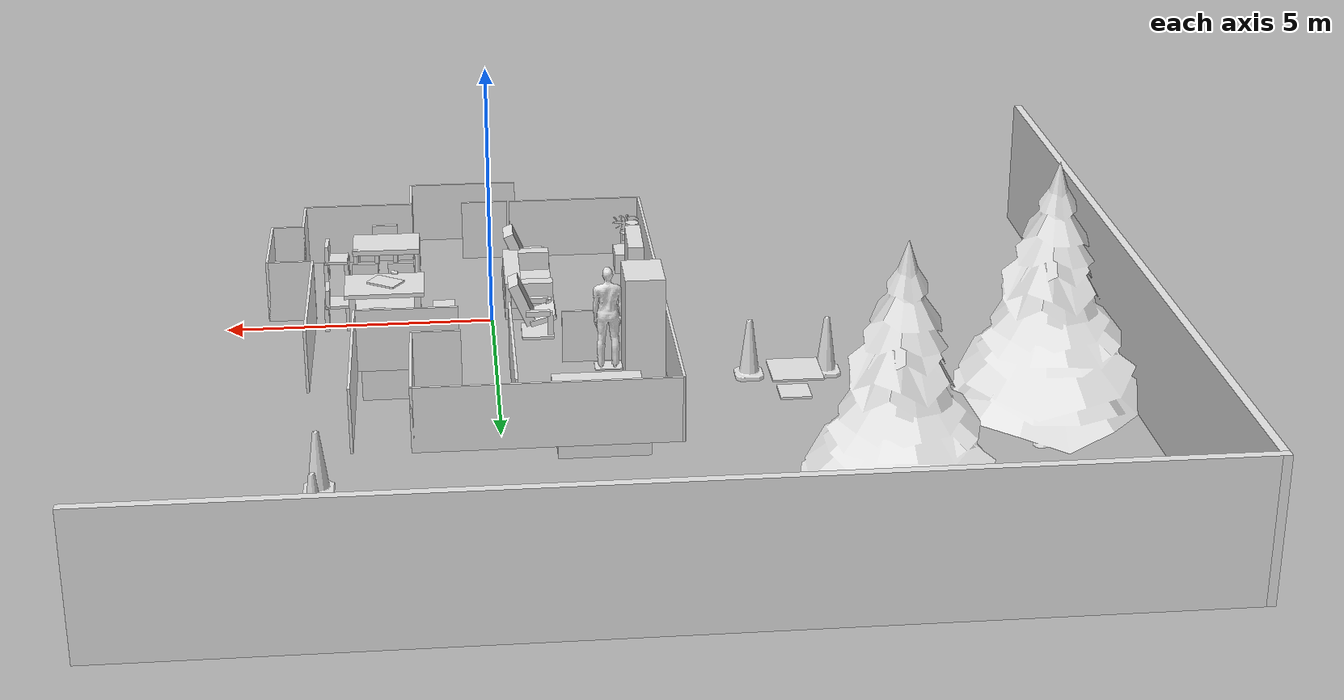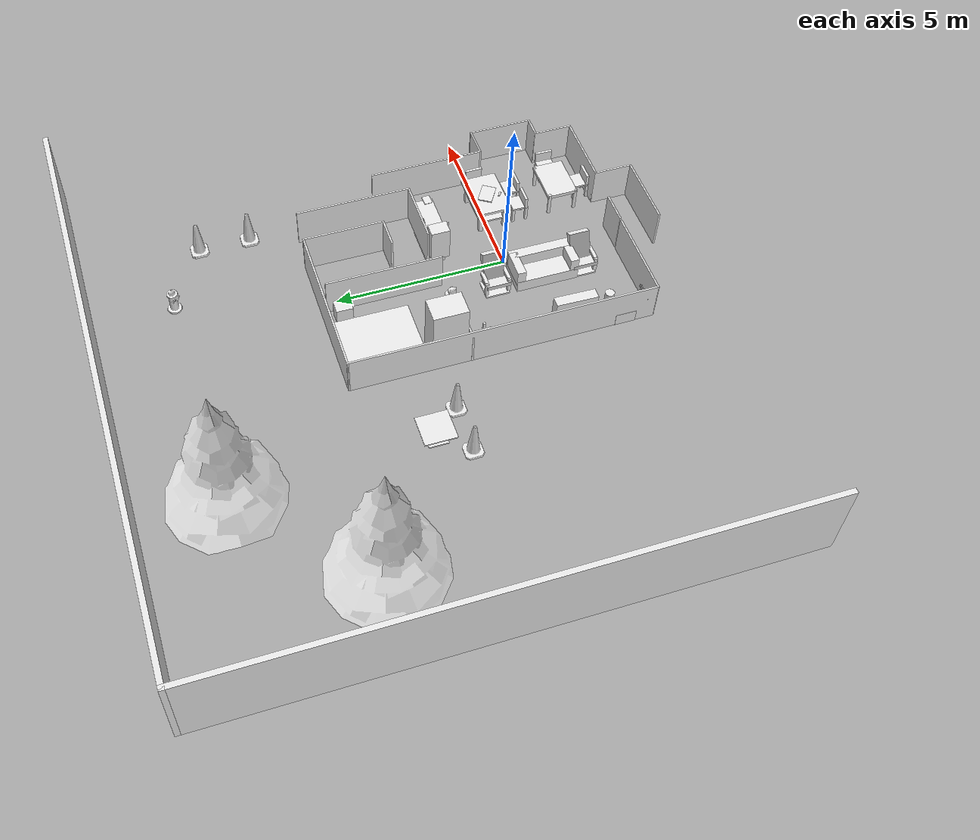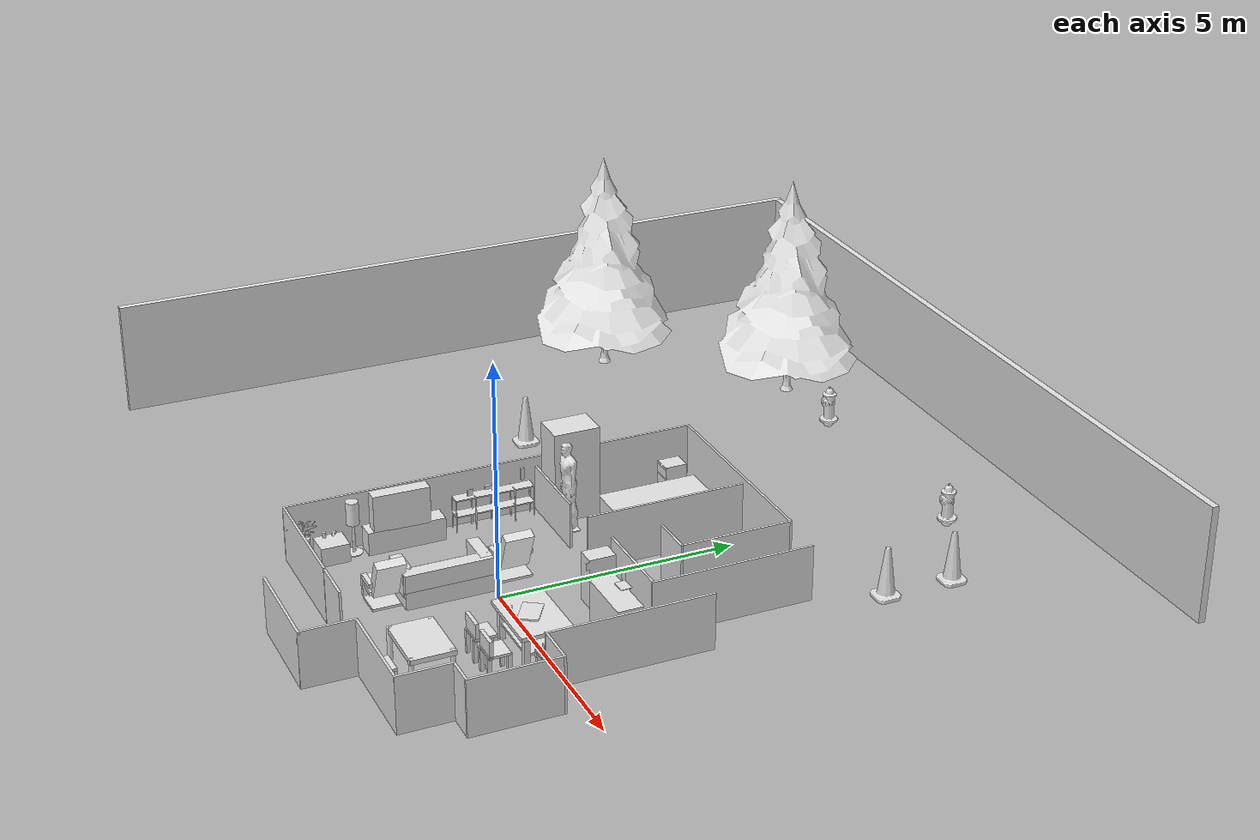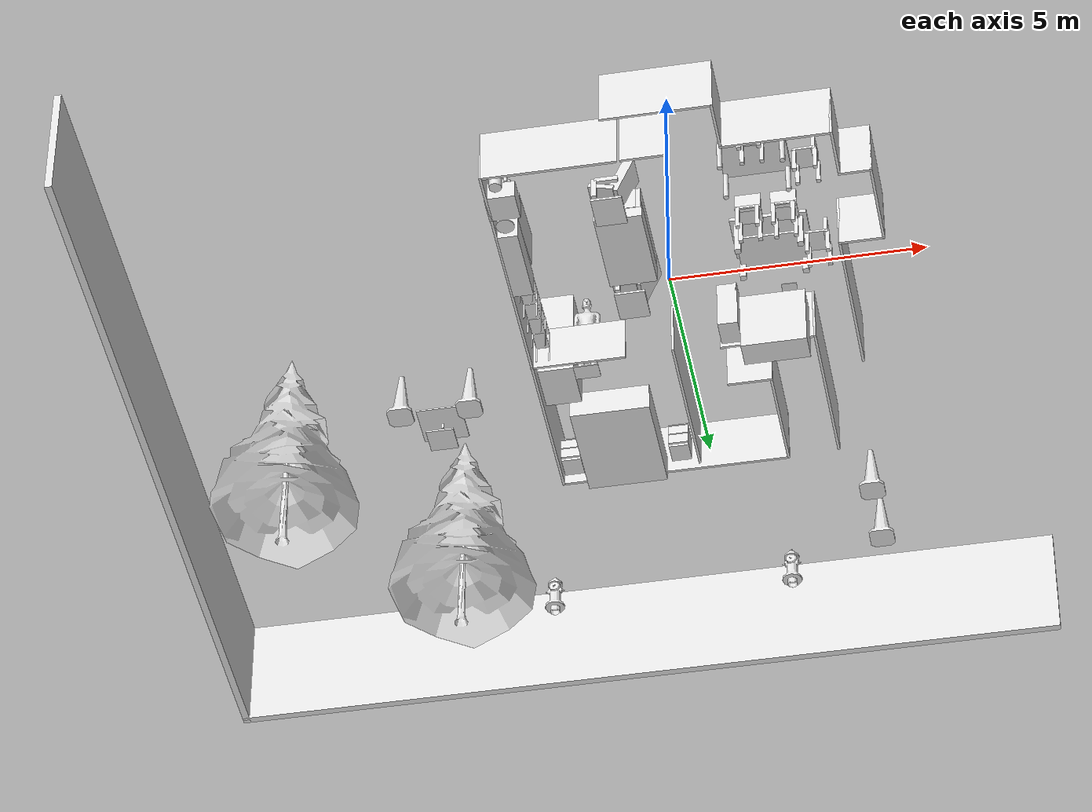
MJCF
<?xml version="1.0" ?>
<mujoco model="isr_testbed">
	<compiler meshdir="isr_testbed/meshes" texturedir="isr_testbed/textures" angle="radian" autolimits="true" balanceinertia="true" boundmass="0.000001" boundinertia="0.000001"/>
	<default>
		<default class="isr_testbed_collision">
			<geom rgba="0.9 0.9 0.9 1.0"/>
		</default>
	</default>
	<asset>
		<mesh name="construction_cone_10_0_10_0_10_0" file="stl/construction_cone.stl" scale="10.0 10.0 10.0"/>
		<mesh name="fire_hydrant" file="stl/fire_hydrant.stl" scale="1.0 1.0 1.0"/>
		<mesh name="pine_tree" file="stl/pine_tree.stl" scale="1.0 1.0 1.0"/>
		<mesh name="standing" file="stl/standing.stl" scale="1.0 1.0 1.0"/>
		<mesh name="plastic_cup" file="stl/plastic_cup.stl" scale="1.0 1.0 1.0"/>
		<mesh name="shelf_0_15000000596046448_0_20000000298023224_0_20000000298023224" file="stl/shelf.stl" scale="0.15000000596046448 0.20000000298023224 0.20000000298023224"/>
		<mesh name="plant_floor_small" file="stl/plant_floor_small.stl" scale="1.0 1.0 1.0"/>
		<mesh name="bedroom_nightstand" file="stl/bedroom_nightstand.stl" scale="1.0 1.0 1.0"/>
		<mesh name="cabinet_diamondback_1_7999999523162842_1_0_1_0" file="stl/cabinet_diamondback.stl" scale="1.7999999523162842 1.0 1.0"/>
		<mesh name="aruco_marker_0_0_10000000149011612_0_10000000149011612_0_10000000149011612" file="stl/aruco_marker_0.stl" scale="0.10000000149011612 0.10000000149011612 0.10000000149011612"/>
	</asset>
	<worldbody>
		<body name="isr_testbed" pos="0.0 0.0 0.0" quat="1.0 0.0 0.0 0.0">
			<body name="walls" pos="0.4918299913406372 0.43352198600769043 0.0" quat="1.0 0.0 0.0 0.0">
				<body name="walls__walls__Wall_19" pos="0.0 0.0 0.0" quat="1.0 0.0 0.0 0.0">
					<inertial mass="95.0" pos="-2.66198992729187 1.5939899682998657 0.5" quat="0.8592931032180786 0.4342738389968872 -0.04348376393318176 -0.26670360565185547" diaginertia="15.639325141906738 964.9898071289062 969.0311889648438"/>
					<geom name="walls__walls__Wall_19_geom_collision_0" type="box" pos="-2.66198992729187 1.5939899682998657 0.5" quat="1.0 0.0 0.0 0.0" size="0.949999988079071 0.02500000037252903 0.5" class="isr_testbed_collision"/>
				</body>
				<body name="walls__walls__Wall_22" pos="0.0 0.0 0.0" quat="1.0 0.0 0.0 0.0">
					<inertial mass="69.0" pos="1.027999997138977 -4.331999778747559 0.6000000238418579" quat="0.49037545919418335 0.3793216049671173 0.560900092124939 0.5486693978309631" diaginertia="10.791659355163574 1400.263671875 1405.997314453125"/>
					<geom name="walls__walls__Wall_22_geom_collision_0" type="box" pos="1.027999997138977 -4.331999778747559 0.6000000238418579" quat="0.7071054577827454 0.0 0.0 0.7071080803871155" size="0.574999988079071 0.02500000037252903 0.6000000238418579" class="isr_testbed_collision"/>
				</body>
				<body name="walls__walls__Wall_24" pos="0.0 0.0 0.0" quat="1.0 0.0 0.0 0.0">
					<inertial mass="69.0" pos="3.128000020980835 -3.2320001125335693 0.6000000238418579" quat="0.319521427154541 0.23038722574710846 0.6647292971611023 0.6347934603691101" diaginertia="8.33503246307373 1428.35498046875 1436.55615234375"/>
					<geom name="walls__walls__Wall_24_geom_collision_0" type="box" pos="3.128000020980835 -3.2320001125335693 0.6000000238418579" quat="0.7071054577827454 0.0 0.0 0.7071080803871155" size="0.574999988079071 0.02500000037252903 0.6000000238418579" class="isr_testbed_collision"/>
				</body>
				<body name="walls__walls__Wall_26" pos="0.0 0.0 0.0" quat="1.0 0.0 0.0 0.0">
					<inertial mass="114.0" pos="3.7279999256134033 -1.7569999694824219 0.6000000238418579" quat="-0.4159852862358093 0.8790838718414307 -0.16797369718551636 0.16109833121299744" diaginertia="26.421409606933594 2009.6641845703125 2014.5794677734375"/>
					<geom name="walls__walls__Wall_26_geom_collision_0" type="box" pos="3.7279999256134033 -1.7569999694824219 0.6000000238418579" quat="0.7071054577827454 0.0 0.0 0.7071080803871155" size="0.949999988079071 0.02500000037252903 0.6000000238418579" class="isr_testbed_collision"/>
				</body>
				<body name="walls__walls__Wall_36" pos="0.0 0.0 0.0" quat="1.0 0.0 0.0 0.0">
					<inertial mass="114.0" pos="1.1169999837875366 1.6639900207519531 0.6000000238418579" quat="-0.46763384342193604 -0.040545616298913956 -0.23409757018089294 0.8513947129249573" diaginertia="36.60622787475586 521.9414672851562 535.3036499023438"/>
					<geom name="walls__walls__Wall_36_geom_collision_0" type="box" pos="1.1169999837875366 1.6639900207519531 0.6000000238418579" quat="1.0 0.0 0.0 0.0" size="0.949999988079071 0.02500000037252903 0.6000000238418579" class="isr_testbed_collision"/>
				</body>
				<body name="walls__walls__Wall_49" pos="0.0 0.0 0.0" quat="1.0 0.0 0.0 0.0">
					<inertial mass="279.0" pos="-1.2869900465011597 5.093989849090576 0.6000000238418579" quat="0.79197096824646 0.04753950610756874 0.03515655919909477 -0.6076890826225281" diaginertia="504.08966064453125 7867.44677734375 8305.4990234375"/>
					<geom name="walls__walls__Wall_49_geom_collision_0" type="box" pos="-1.2869900465011597 5.093989849090576 0.6000000238418579" quat="1.0 0.0 0.0 0.0" size="2.325000047683716 0.02500000037252903 0.6000000238418579" class="isr_testbed_collision"/>
				</body>
				<body name="walls__walls__Wall_51" pos="0.0 0.0 0.0" quat="1.0 0.0 0.0 0.0">
					<inertial mass="54.0" pos="0.5879999995231628 2.743989944458008 0.6000000238418579" quat="0.5109943151473999 -0.3683679401874542 0.5798571109771729 -0.5166774392127991" diaginertia="9.684675216674805 448.6288757324219 451.36328125"/>
					<geom name="walls__walls__Wall_51_geom_collision_0" type="box" pos="0.5879999995231628 2.743989944458008 0.6000000238418579" quat="1.326794858869107e-06 0.0 0.0 1.0" size="0.44999998807907104 0.02500000037252903 0.6000000238418579" class="isr_testbed_collision"/>
				</body>
				<body name="walls__walls__Wall_58" pos="0.0 0.0 0.0" quat="1.0 0.0 0.0 0.0">
					<inertial mass="204.0" pos="2.0420000553131104 3.3389899730682373 0.6000000238418579" quat="0.20206968486309052 0.8408445715904236 0.4616711437702179 0.19750437140464783" diaginertia="66.4295883178711 3373.263671875 3399.26806640625"/>
					<geom name="walls__walls__Wall_58_geom_collision_0" type="box" pos="2.0420000553131104 3.3389899730682373 0.6000000238418579" quat="0.7071054577827454 0.0 0.0 0.7071080803871155" size="1.7000000476837158 0.02500000037252903 0.6000000238418579" class="isr_testbed_collision"/>
				</body>
				<body name="walls__walls__Wall_63" pos="0.0 0.0 0.0" quat="1.0 0.0 0.0 0.0">
					<inertial mass="204.0" pos="2.878000020980835 0.8429999947547913 0.6000000238418579" quat="0.9819633364677429 -0.030275439843535423 -0.10447938740253448 0.1546461433172226" diaginertia="194.31451416015625 1958.2252197265625 2105.786865234375"/>
					<geom name="walls__walls__Wall_63_geom_collision_0" type="box" pos="2.878000020980835 0.8429999947547913 0.6000000238418579" quat="0.7071054577827454 0.0 0.0 0.7071080803871155" size="1.7000000476837158 0.02500000037252903 0.6000000238418579" class="isr_testbed_collision"/>
				</body>
				<body name="walls__walls__Door_4" pos="0.0 0.0 0.0" quat="1.0 0.0 0.0 0.0">
					<inertial mass="54.36000061035156" pos="-0.4442499876022339 -3.764090061187744 0.6000000238418579" quat="0.557914137840271 0.49685895442962646 0.515251636505127 0.41997474431991577" diaginertia="10.031599998474121 804.3779907226562 807.0777587890625"/>
					<geom name="walls__walls__Door_4_geom_collision_0" type="box" pos="-0.4442499876022339 -3.764090061187744 0.6000000238418579" quat="0.9999998807907104 0.0 0.0 -0.0004799999878741801" size="0.453000009059906 0.02500000037252903 0.6000000238418579" class="isr_testbed_collision"/>
				</body>
				<body name="walls__walls__Wall_23" pos="0.0 0.0 0.0" quat="1.0 0.0 0.0 0.0">
					<inertial mass="129.0" pos="2.078000068664551 -3.7820000648498535 0.6000000238418579" quat="0.8568839430809021 -0.08926455676555634 -0.027664201334118843 -0.5069678425788879" diaginertia="53.40256881713867 2475.46484375 2498.78515625"/>
					<geom name="walls__walls__Wall_23_geom_collision_0" type="box" pos="2.078000068664551 -3.7820000648498535 0.6000000238418579" quat="1.0 0.0 0.0 0.0" size="1.0750000476837158 0.02500000037252903 0.6000000238418579" class="isr_testbed_collision"/>
				</body>
				<body name="walls__walls__Wall_27" pos="0.0 0.0 0.0" quat="1.0 0.0 0.0 0.0">
					<inertial mass="54.0" pos="3.302999973297119 -0.8320000171661377 0.6000000238418579" quat="0.6999917030334473 -0.6982873678207397 0.023055559024214745 -0.14790122210979462" diaginertia="6.614678382873535 649.6946411132812 655.8627319335938"/>
					<geom name="walls__walls__Wall_27_geom_collision_0" type="box" pos="3.302999973297119 -0.8320000171661377 0.6000000238418579" quat="1.326794858869107e-06 0.0 0.0 1.0" size="0.44999998807907104 0.02500000037252903 0.6000000238418579" class="isr_testbed_collision"/>
				</body>
				<body name="walls__walls__Wall_50" pos="0.0 0.0 0.0" quat="1.0 0.0 0.0 0.0">
					<inertial mass="144.0" pos="1.0129899978637695 3.918989896774292 0.6000000238418579" quat="0.4731360077857971 -0.3900817036628723 0.5872927308082581 -0.5282668471336365" diaginertia="18.409515380859375 2479.284912109375 2497.619384765625"/>
					<geom name="walls__walls__Wall_50_geom_collision_0" type="box" pos="1.0129899978637695 3.918989896774292 0.6000000238418579" quat="-0.7071054577827454 0.0 0.0 0.7071080803871155" size="1.2000000476837158 0.02500000037252903 0.6000000238418579" class="isr_testbed_collision"/>
				</body>
				<body name="walls__walls__Wall_61" pos="0.0 0.0 0.0" quat="1.0 0.0 0.0 0.0">
					<inertial mass="159.0" pos="-2.2749900817871094 -3.75600004196167 0.6000000238418579" quat="-0.48653125762939453 0.03129342570900917 0.08292688429355621 0.8691554665565491" diaginertia="86.72979736328125 3167.241943359375 3216.861572265625"/>
					<geom name="walls__walls__Wall_61_geom_collision_0" type="box" pos="-2.2749900817871094 -3.75600004196167 0.6000000238418579" quat="1.0 0.0 0.0 0.0" size="1.3250000476837158 0.02500000037252903 0.6000000238418579" class="isr_testbed_collision"/>
				</body>
				<body name="walls__walls__Wall_21" pos="0.0 0.0 0.0" quat="1.0 0.0 0.0 0.0">
					<inertial mass="129.0" pos="-0.02199999988079071 -4.881999969482422 0.6000000238418579" quat="-0.7041720747947693 0.04323595389723778 0.043605584651231766 0.7073689699172974" diaginertia="64.93980407714844 3136.58642578125 3171.028564453125"/>
					<geom name="walls__walls__Wall_21_geom_collision_0" type="box" pos="-0.02199999988079071 -4.881999969482422 0.6000000238418579" quat="1.0 0.0 0.0 0.0" size="1.0750000476837158 0.02500000037252903 0.6000000238418579" class="isr_testbed_collision"/>
				</body>
				<body name="walls__walls__Wall_48" pos="0.0 0.0 0.0" quat="1.0 0.0 0.0 0.0">
					<inertial mass="534.0006103515625" pos="-3.5809900760650635 0.6690000295639038 0.6000000238418579" quat="-0.03689687326550484 0.9963682889938354 0.0024616303853690624 -0.07669904828071594" diaginertia="3199.31298828125 7730.9833984375 10805.7783203125"/>
					<geom name="walls__walls__Wall_48_geom_collision_0" type="box" pos="-3.5809900760650635 0.6690000295639038 0.6000000238418579" quat="0.7066280245780945 0.0 0.0 0.7075852155685425" size="4.450005054473877 0.02500000037252903 0.6000000238418579" class="isr_testbed_collision"/>
				</body>
				<body name="walls__walls__Wall_25" pos="0.0 0.0 0.0" quat="1.0 0.0 0.0 0.0">
					<inertial mass="39.0" pos="3.427999973297119 -2.681999921798706 0.6000000238418579" quat="-0.658708930015564 0.6756038665771484 -0.18054819107055664 0.27760472893714905" diaginertia="5.13415002822876 754.3189086914062 758.4054565429688"/>
					<geom name="walls__walls__Wall_25_geom_collision_0" type="box" pos="3.427999973297119 -2.681999921798706 0.6000000238418579" quat="1.0 0.0 0.0 0.0" size="0.32499998807907104 0.02500000037252903 0.6000000238418579" class="isr_testbed_collision"/>
				</body>
				<body name="walls__walls__Wall_53" pos="0.0 0.0 0.0" quat="1.0 0.0 0.0 0.0">
					<inertial mass="204.0" pos="-0.7649999856948853 3.2479898929595947 0.6000000238418579" quat="0.5049051642417908 0.37802302837371826 0.35284602642059326 0.6911360621452332" diaginertia="45.70252227783203 2531.861572265625 2554.343994140625"/>
					<geom name="walls__walls__Wall_53_geom_collision_0" type="box" pos="-0.7649999856948853 3.2479898929595947 0.6000000238418579" quat="0.7071054577827454 0.0 0.0 0.7071080803871155" size="1.7000000476837158 0.02500000037252903 0.6000000238418579" class="isr_testbed_collision"/>
				</body>
			</body>
			<body name="cone1__Construction_Cone__link" pos="-5.940000057220459 2.9700000286102295 0.0" quat="1.0 0.0 0.0 0.0">
				<inertial mass="0.06330608576536179" pos="-5.940000057220459 2.9700000286102295 0.03022611141204834" quat="-0.5754276514053345 0.4109538197517395 0.5754276514053345 0.4109538197517395" diaginertia="1.1387942322471645e-05 0.00010928498522844166 0.00010928498522844166"/>
				<geom name="cone1__Construction_Cone__link_geom_collision_0_construction_cone" type="mesh" pos="0.0 0.0 0.0" quat="1.0 0.0 0.0 0.0" mesh="construction_cone_10_0_10_0_10_0" class="isr_testbed_collision"/>
			</body>
			<body name="cone3__Construction_Cone__link" pos="3.0299999713897705 6.840000152587891 0.0" quat="1.0 0.0 0.0 0.0">
				<inertial mass="0.06330608576536179" pos="3.0299999713897705 6.840000152587891 0.03022611141204834" quat="-0.5754276514053345 0.4109538197517395 0.5754276514053345 0.4109538197517395" diaginertia="1.1387942322471645e-05 0.00010928498522844166 0.00010928498522844166"/>
				<geom name="cone3__Construction_Cone__link_geom_collision_0_construction_cone" type="mesh" pos="0.0 0.0 0.0" quat="1.0 0.0 0.0 0.0" mesh="construction_cone_10_0_10_0_10_0" class="isr_testbed_collision"/>
			</body>
			<body name="table_outside__cafe_table__link" pos="-5.25 3.7699999809265137 0.0" quat="1.0 0.0 0.0 0.0">
				<inertial mass="41.983516693115234" pos="-5.25 3.7699999809265137 0.32101869583129883" quat="0.7071067690849304 0.0 0.7071067690849304 0.0" diaginertia="4.708928108215332 8.308773040771484 8.308773040771484"/>
				<geom name="table_outside__cafe_table__link_geom_collision_0" type="box" pos="0.0 0.0 0.44999998807907104" quat="1.0 0.0 0.0 0.0" size="0.45649999380111694 0.45649999380111694 0.017500000074505806" class="isr_testbed_collision"/>
				<geom name="table_outside__cafe_table__link_geom_collision_1" type="box" pos="0.0 0.0 0.3700000047683716" quat="1.0 0.0 0.0 0.0" size="0.020999999716877937 0.020999999716877937 0.07500000298023224" class="isr_testbed_collision"/>
				<geom name="table_outside__cafe_table__link_geom_collision_2" type="box" pos="0.0 0.0 0.019999999552965164" quat="1.0 0.0 0.0 0.0" size="0.2800000011920929 0.2800000011920929 0.019999999552965164" class="isr_testbed_collision"/>
			</body>
			<body name="hydrant2__fire_hydrant__link" pos="-4.0 9.449999809265137 0.0" quat="1.0 0.0 0.0 0.0">
				<inertial mass="36.59939956665039" pos="-4.0 9.439549446105957 0.4068094491958618" quat="0.49307262897491455 0.5068327188491821 -0.5068296194076538 0.49307575821876526" diaginertia="0.3782685101032257 8.444462776184082 8.449933052062988"/>
				<geom name="hydrant2__fire_hydrant__link_geom_collision_0_fire_hydrant" type="mesh" pos="0.0 0.0 0.0" quat="1.0 0.0 0.0 0.0" mesh="fire_hydrant" class="isr_testbed_collision"/>
			</body>
			<body name="tree2__pine_tree__link" pos="-9.109999656677246 6.25 0.0" quat="1.0 0.0 0.0 0.0">
				<inertial mass="45616.28515625" pos="-9.111001968383789 6.250436305999756 1.7184935808181763" quat="-0.24968722462654114 0.6612666845321655 0.24879097938537598 0.6621825695037842" diaginertia="18388.896484375 174619.78125 174635.328125"/>
				<geom name="tree2__pine_tree__link_geom_collision_0_pine_tree" type="mesh" pos="0.0 0.0 0.0" quat="1.0 0.0 0.0 0.0" mesh="pine_tree" class="isr_testbed_collision"/>
			</body>
			<body name="wardrobe__wardrobe__base_link" pos="-2.6500000953674316 2.440000057220459 0.0" quat="1.0 0.0 0.0 0.0">
				<inertial mass="1440.0" pos="-2.6500000953674316 2.640000104904175 1.0" quat="-0.174540713429451 0.6843466758728027 -0.2803066372871399 -0.6501025557518005" diaginertia="194.10926818847656 2033.285400390625 2092.22119140625"/>
				<geom name="wardrobe__wardrobe__base_link_geom_collision_0" type="box" pos="0.0 0.20000000298023224 1.0" quat="0.7073882818222046 0.0 0.0 0.7068251967430115" size="0.5 0.36000001430511475 1.0" class="isr_testbed_collision"/>
			</body>
			<body name="basmati_rice__basmati_rice__base_link" pos="-2.8499999046325684 0.5 0.800000011920929" quat="1.0 0.0 0.0 0.0">
				<inertial mass="0.8503400087356567" pos="-2.8499999046325684 0.5 0.800000011920929" quat="0.7071067690849304 0.0 0.7071067690849304 0.0" diaginertia="0.0011738234898075461 0.0021670206915587187 0.003102607326582074"/>
				<geom name="basmati_rice__basmati_rice__base_link_geom_collision_0" type="box" pos="0.0 0.0 0.0" quat="1.0 0.0 0.0 0.0" size="0.020500000566244125 0.061000000685453415 0.08500000089406967" class="isr_testbed_collision"/>
			</body>
			<body name="beer__beer__link" pos="-2.7300000190734863 -2.640000104904175 0.6000000238418579" quat="0.8775825500488281 0.0 0.0 0.4794255495071411">
				<inertial mass="0.46181410551071167" pos="-2.7300000190734863 -2.640000104904175 0.6000000238418579" quat="0.7071067690849304 0.0 0.7071067690849304 0.0" diaginertia="0.00028286114684306085 0.0006956075085327029 0.0006956075085327029"/>
				<geom name="beer__beer__link_geom_collision_0" type="cylinder" pos="0.0 0.0 0.0" quat="1.0 0.0 0.0 0.0" size="0.03500000014901161 0.05999999865889549 0.0" class="isr_testbed_collision"/>
			</body>
			<body name="cup2__plastic_cup__link" pos="1.8300000429153442 -0.47999998927116394 0.800000011920929" quat="0.8775825500488281 0.0 0.0 0.4794255495071411">
				<inertial mass="0.059198495000600815" pos="1.8187295198440552 -0.4727632999420166 0.8728533387184143" quat="0.01314468402415514 0.7069846987724304 -0.013144700787961483 -0.7069844603538513" diaginertia="0.00013955631584394723 0.0003071530372835696 0.0003935518325306475"/>
				<geom name="cup2__plastic_cup__link_geom_collision_0_plastic_cup" type="mesh" pos="0.0 0.0 0.06499999761581421" quat="1.0 0.0 0.0 0.0" mesh="plastic_cup" class="isr_testbed_collision"/>
			</body>
			<body name="lamp_ikea_arstid__lamp_ikea_arstid__base_link" pos="-2.8499999046325684 -2.0 0.0" quat="0.7109135389328003 0.0 0.0 0.703279435634613">
				<inertial mass="30.84415626525879" pos="-2.8499999046325684 -2.0 0.8053982257843018" quat="0.7071067690849304 0.0 0.7071067690849304 0.0" diaginertia="0.2583146393299103 22.704551696777344 22.704551696777344"/>
				<geom name="lamp_ikea_arstid__lamp_ikea_arstid__base_link_geom_collision_0" type="cylinder" pos="0.0 0.0 0.41999998688697815" quat="1.0 0.0 0.0 0.0" size="0.029999999329447746 0.4000000059604645 0.0" class="isr_testbed_collision"/>
				<geom name="lamp_ikea_arstid__lamp_ikea_arstid__base_link_geom_collision_1" type="cylinder" pos="0.0 0.0 0.0" quat="1.0 0.0 0.0 0.0" size="0.18000000715255737 0.009999999776482582 0.0" class="isr_testbed_collision"/>
				<geom name="lamp_ikea_arstid__lamp_ikea_arstid__base_link_geom_collision_2" type="cylinder" pos="0.0 0.0 0.8999999761581421" quat="1.0 0.0 0.0 0.0" size="0.12999999523162842 0.25 0.0" class="isr_testbed_collision"/>
			</body>
			<body name="apple_juice_box__apple_juice__base_link" pos="-2.8399999141693115 1.6399999856948853 1.0" quat="1.0 0.0 0.0 0.0">
				<inertial mass="1.2330989837646484" pos="-2.8399999141693115 1.6399999856948853 1.0054999589920044" quat="0.7071067690849304 0.0 0.7071067690849304 0.0" diaginertia="0.0009784640278667212 0.007419659290462732 0.007419659290462732"/>
				<geom name="apple_juice_box__apple_juice__base_link_geom_collision_0" type="box" pos="0.0 0.0 0.005499999970197678" quat="1.0 0.0 0.0 0.0" size="0.03449999913573265 0.03449999913573265 0.12950000166893005" class="isr_testbed_collision"/>
			</body>
			<body name="bed__bed__link_0" pos="-1.9493299722671509 4.309919834136963 0.0" quat="1.0 0.0 0.0 0.0">
				<inertial mass="2112.0" pos="-1.7493300437927246 4.309919834136963 0.0" quat="-0.7071067690849304 0.0 0.0 0.7071067690849304" diaginertia="598.4000244140625 915.2000122070312 1386.8800048828125"/>
				<geom name="bed__bed__link_0_geom_collision_0" type="box" pos="0.20000000298023224 0.0 0.0" quat="1.0 0.0 0.0 0.0" size="0.800000011920929 1.100000023841858 0.30000001192092896" class="isr_testbed_collision"/>
			</body>
			<body name="nightstand2__bedroom_nightstand__link_0" pos="-2.890000104904175 5.037129878997803 0.0" quat="1.0 0.0 0.0 0.0">
				<inertial mass="-149.60366821289062" pos="-12.886117935180664 8.398426055908203 -45.009151458740234" quat="0.6344698667526245 0.01081196777522564 0.7721571326255798 0.03323240578174591" diaginertia="676.2904052734375 2932.33203125 3056.34130859375"/>
				<geom name="nightstand2__bedroom_nightstand__link_0_geom_collision_0_bedroom_nightstand" type="mesh" pos="0.0 0.0 0.0" quat="1.0 0.0 0.0 0.0" mesh="bedroom_nightstand" class="isr_testbed_collision"/>
			</body>
			<body name="table_living_room__table_living_room__base_link" pos="2.0 -0.15669499337673187 0.0" quat="0.7086488008499146 0.0 0.0 -0.7055613398551941">
				<inertial mass="221.1999969482422" pos="2.0238964557647705 -0.1275668740272522 0.5856600403785706" quat="0.02720206044614315 0.7267293930053711 -0.029595907777547836 -0.6857466697692871" diaginertia="67.39175415039062 106.83684539794922 133.34300231933594"/>
				<geom name="table_living_room__table_living_room__base_link_geom_collision_0" type="box" pos="-0.029999999329447746 0.02500000037252903 0.75" quat="1.0 0.0 0.0 0.0" size="0.5249999761581421 0.75 0.03999999910593033" class="isr_testbed_collision"/>
				<geom name="table_living_room__table_living_room__base_link_geom_collision_1" type="box" pos="-0.029999999329447746 0.02500000037252903 0.3499999940395355" quat="1.0 0.0 0.0 0.0" size="0.4000000059604645 0.6499999761581421 0.02500000037252903" class="isr_testbed_collision"/>
				<geom name="table_living_room__table_living_room__base_link_geom_collision_2" type="box" pos="-0.4000000059604645 0.6299999952316284 0.38999998569488525" quat="1.0 0.0 0.0 0.0" size="0.05999999865889549 0.05999999865889549 0.375" class="isr_testbed_collision"/>
				<geom name="table_living_room__table_living_room__base_link_geom_collision_3" type="box" pos="0.3499999940395355 0.6299999952316284 0.38999998569488525" quat="1.0 0.0 0.0 0.0" size="0.05999999865889549 0.05999999865889549 0.375" class="isr_testbed_collision"/>
				<geom name="table_living_room__table_living_room__base_link_geom_collision_4" type="box" pos="0.3499999940395355 -0.5899999737739563 0.38999998569488525" quat="1.0 0.0 0.0 0.0" size="0.05999999865889549 0.05999999865889549 0.375" class="isr_testbed_collision"/>
				<geom name="table_living_room__table_living_room__base_link_geom_collision_5" type="box" pos="-0.4000000059604645 -0.5899999737739563 0.38999998569488525" quat="1.0 0.0 0.0 0.0" size="0.05999999865889549 0.05999999865889549 0.375" class="isr_testbed_collision"/>
			</body>
			<body name="cabinet_ikea_galant__cabinet_ikea_galant__base_link" pos="1.7999999523162842 1.6799999475479126 0.0" quat="1.0 0.0 0.0 0.0">
				<inertial mass="926.6400146484375" pos="1.7999999523162842 1.6799999475479126 0.0" quat="-0.5 0.5 0.5 0.5" diaginertia="153.01914978027344 157.0654754638672 265.0499267578125"/>
				<geom name="cabinet_ikea_galant__cabinet_ikea_galant__base_link_geom_collision_0" type="box" pos="0.0 0.0 0.0" quat="1.0 0.0 0.0 0.0" size="0.6499999761581421 0.27000001072883606 0.6600000262260437" class="isr_testbed_collision"/>
			</body>
			<body name="chair_dinning_room_1__simple_chair__link_0" pos="1.909999966621399 -3.049999952316284 0.0" quat="1.0 0.0 0.0 0.0">
				<inertial mass="38.29999923706055" pos="2.0566580295562744 -3.163250684738159 0.42225849628448486" quat="0.697449803352356 -0.4026322364807129 -0.40812212228775024 -0.42998531460762024" diaginertia="1.8411253690719604 10.58272933959961 10.877289772033691"/>
				<geom name="chair_dinning_room_1__simple_chair__link_0_geom_collision_0" type="box" pos="0.15000000596046448 -0.05000000074505806 0.44999998807907104" quat="1.0 0.0 0.0 0.0" size="0.25 0.22499999403953552 0.02500000037252903" class="isr_testbed_collision"/>
				<geom name="chair_dinning_room_1__simple_chair__link_0_geom_collision_1" type="box" pos="0.15000000596046448 -0.2199999988079071 0.6000000238418579" quat="1.0 0.0 0.0 0.0" size="0.25 0.03750000149011612 0.1899999976158142" class="isr_testbed_collision"/>
				<geom name="chair_dinning_room_1__simple_chair__link_0_geom_collision_2" type="box" pos="0.33000001311302185 -0.25 0.20000000298023224" quat="1.0 0.0 0.0 0.0" size="0.03999999910593033 0.03999999910593033 0.25" class="isr_testbed_collision"/>
				<geom name="chair_dinning_room_1__simple_chair__link_0_geom_collision_3" type="box" pos="0.33000001311302185 0.15000000596046448 0.20000000298023224" quat="1.0 0.0 0.0 0.0" size="0.03999999910593033 0.03999999910593033 0.25" class="isr_testbed_collision"/>
				<geom name="chair_dinning_room_1__simple_chair__link_0_geom_collision_4" type="box" pos="-0.05000000074505806 -0.25 0.20000000298023224" quat="1.0 0.0 0.0 0.0" size="0.03999999910593033 0.03999999910593033 0.25" class="isr_testbed_collision"/>
				<geom name="chair_dinning_room_1__simple_chair__link_0_geom_collision_5" type="box" pos="-0.05000000074505806 0.15000000596046448 0.20000000298023224" quat="1.0 0.0 0.0 0.0" size="0.03999999910593033 0.03999999910593033 0.25" class="isr_testbed_collision"/>
			</body>
			<body name="chair_kitchen_1__simple_chair__link_0" pos="1.5700000524520874 -0.9800000190734863 0.0" quat="1.0 0.0 0.0 0.0">
				<inertial mass="38.29999923706055" pos="1.7166579961776733 -1.0932506322860718 0.42225849628448486" quat="0.697449803352356 -0.4026322364807129 -0.40812212228775024 -0.42998531460762024" diaginertia="1.8411253690719604 10.58272933959961 10.877289772033691"/>
				<geom name="chair_kitchen_1__simple_chair__link_0_geom_collision_0" type="box" pos="0.15000000596046448 -0.05000000074505806 0.44999998807907104" quat="1.0 0.0 0.0 0.0" size="0.25 0.22499999403953552 0.02500000037252903" class="isr_testbed_collision"/>
				<geom name="chair_kitchen_1__simple_chair__link_0_geom_collision_1" type="box" pos="0.15000000596046448 -0.2199999988079071 0.6000000238418579" quat="1.0 0.0 0.0 0.0" size="0.25 0.03750000149011612 0.1899999976158142" class="isr_testbed_collision"/>
				<geom name="chair_kitchen_1__simple_chair__link_0_geom_collision_2" type="box" pos="0.33000001311302185 -0.25 0.20000000298023224" quat="1.0 0.0 0.0 0.0" size="0.03999999910593033 0.03999999910593033 0.25" class="isr_testbed_collision"/>
				<geom name="chair_kitchen_1__simple_chair__link_0_geom_collision_3" type="box" pos="0.33000001311302185 0.15000000596046448 0.20000000298023224" quat="1.0 0.0 0.0 0.0" size="0.03999999910593033 0.03999999910593033 0.25" class="isr_testbed_collision"/>
				<geom name="chair_kitchen_1__simple_chair__link_0_geom_collision_4" type="box" pos="-0.05000000074505806 -0.25 0.20000000298023224" quat="1.0 0.0 0.0 0.0" size="0.03999999910593033 0.03999999910593033 0.25" class="isr_testbed_collision"/>
				<geom name="chair_kitchen_1__simple_chair__link_0_geom_collision_5" type="box" pos="-0.05000000074505806 0.15000000596046448 0.20000000298023224" quat="1.0 0.0 0.0 0.0" size="0.03999999910593033 0.03999999910593033 0.25" class="isr_testbed_collision"/>
			</body>
			<body name="chair_kitchen_3__simple_chair__link_0" pos="2.880000114440918 -0.25999999046325684 0.0" quat="0.7002847790718079 0.0 0.0 0.7138636112213135">
				<inertial mass="38.29999923706055" pos="2.9904136657714844 -0.11119437962770462 0.42225849628448486" quat="0.697449803352356 -0.4026322364807129 -0.40812212228775024 -0.42998531460762024" diaginertia="1.8411253690719604 10.58272933959961 10.877289772033691"/>
				<geom name="chair_kitchen_3__simple_chair__link_0_geom_collision_0" type="box" pos="0.15000000596046448 -0.05000000074505806 0.44999998807907104" quat="1.0 0.0 0.0 0.0" size="0.25 0.22499999403953552 0.02500000037252903" class="isr_testbed_collision"/>
				<geom name="chair_kitchen_3__simple_chair__link_0_geom_collision_1" type="box" pos="0.15000000596046448 -0.2199999988079071 0.6000000238418579" quat="1.0 0.0 0.0 0.0" size="0.25 0.03750000149011612 0.1899999976158142" class="isr_testbed_collision"/>
				<geom name="chair_kitchen_3__simple_chair__link_0_geom_collision_2" type="box" pos="0.33000001311302185 -0.25 0.20000000298023224" quat="1.0 0.0 0.0 0.0" size="0.03999999910593033 0.03999999910593033 0.25" class="isr_testbed_collision"/>
				<geom name="chair_kitchen_3__simple_chair__link_0_geom_collision_3" type="box" pos="0.33000001311302185 0.15000000596046448 0.20000000298023224" quat="1.0 0.0 0.0 0.0" size="0.03999999910593033 0.03999999910593033 0.25" class="isr_testbed_collision"/>
				<geom name="chair_kitchen_3__simple_chair__link_0_geom_collision_4" type="box" pos="-0.05000000074505806 -0.25 0.20000000298023224" quat="1.0 0.0 0.0 0.0" size="0.03999999910593033 0.03999999910593033 0.25" class="isr_testbed_collision"/>
				<geom name="chair_kitchen_3__simple_chair__link_0_geom_collision_5" type="box" pos="-0.05000000074505806 0.15000000596046448 0.20000000298023224" quat="1.0 0.0 0.0 0.0" size="0.03999999910593033 0.03999999910593033 0.25" class="isr_testbed_collision"/>
			</body>
			<body name="chair1__tv_chair__link_0" pos="-0.7300000190734863 -2.049999952316284 0.0" quat="0.7073882818222046 0.0 0.0 -0.7068251967430115">
				<inertial mass="176.0" pos="-0.6993750333786011 -2.049975633621216 0.48721590638160706" quat="-0.5439413785934448 -0.4518050253391266 -0.4518050253391266 0.5439413785934448" diaginertia="13.709712028503418 64.62010955810547 65.55413055419922"/>
				<geom name="chair1__tv_chair__link_0_geom_collision_0" type="box" pos="0.0 -0.20000000298023224 0.3499999940395355" quat="0.9902160167694092 -0.13954311609268188 0.0 0.0" size="0.3499999940395355 0.25 0.05000000074505806" class="isr_testbed_collision"/>
				<geom name="chair1__tv_chair__link_0_geom_collision_1" type="box" pos="0.0 -0.10000000149011612 0.0" quat="1.0 0.0 0.0 0.0" size="0.3499999940395355 0.30000001192092896 0.02500000037252903" class="isr_testbed_collision"/>
				<geom name="chair1__tv_chair__link_0_geom_collision_2" type="box" pos="0.0 0.18000000715255737 0.6499999761581421" quat="0.9800665974617004 -0.19866932928562164 0.0 0.0" size="0.30000001192092896 0.10000000149011612 0.42500001192092896" class="isr_testbed_collision"/>
				<geom name="chair1__tv_chair__link_0_geom_collision_3" type="box" pos="0.33000001311302185 -0.33000001311302185 0.30000001192092896" quat="1.0 0.0 0.0 0.0" size="0.05000000074505806 0.05000000074505806 0.22499999403953552" class="isr_testbed_collision"/>
				<geom name="chair1__tv_chair__link_0_geom_collision_4" type="box" pos="-0.33000001311302185 -0.33000001311302185 0.30000001192092896" quat="1.0 0.0 0.0 0.0" size="0.05000000074505806 0.05000000074505806 0.22499999403953552" class="isr_testbed_collision"/>
				<geom name="chair1__tv_chair__link_0_geom_collision_5" type="box" pos="-0.33000001311302185 -0.10000000149011612 0.5" quat="1.0 0.0 0.0 0.0" size="0.05000000074505806 0.22499999403953552 0.05000000074505806" class="isr_testbed_collision"/>
				<geom name="chair1__tv_chair__link_0_geom_collision_6" type="box" pos="0.33000001311302185 -0.10000000149011612 0.5" quat="1.0 0.0 0.0 0.0" size="0.05000000074505806 0.22499999403953552 0.05000000074505806" class="isr_testbed_collision"/>
			</body>
			<body name="tv__tv__link_0" pos="-2.8499999046325684 -0.9399999976158142 0.03526400029659271" quat="0.9999154806137085 0.0 0.0 -0.012999634258449078">
				<inertial mass="288.0" pos="-2.8020966053009033 -1.0212727785110474 0.8352640271186829" quat="0.7262589335441589 0.038855355232954025 -0.6851867437362671 -0.039463289082050323" diaginertia="36.556617736816406 204.61434936523438 236.75543212890625"/>
				<geom name="tv__tv__link_0_geom_collision_0" type="box" pos="0.05000000074505806 -0.07999999821186066 0.800000011920929" quat="1.0 0.0 0.0 0.0" size="0.15000000596046448 0.6000000238418579 0.4000000059604645" class="isr_testbed_collision"/>
			</body>
			<body name="aruco_marker_0__aruco_marker_0__link_0" pos="1.5 1.9600000381469727 0.800000011920929" quat="0.7071067690849304 0.0 0.0 -0.7071067690849304">
				<inertial mass="67.35445404052734" pos="1.4999998807907104 1.9600000381469727 0.800000011920929" quat="-0.6088486909866333 -0.3595876395702362 0.6088486909866333 0.3595876395702362" diaginertia="22.453073501586914 22.453079223632812 44.90296936035156"/>
				<geom name="aruco_marker_0__aruco_marker_0__link_0_geom_collision_0_aruco_marker_0" type="mesh" pos="0.0 0.0 0.0" quat="1.0 0.0 0.0 0.0" mesh="aruco_marker_0_0_10000000149011612_0_10000000149011612_0_10000000149011612" class="isr_testbed_collision"/>
			</body>
			<body name="cone2__Construction_Cone__link" pos="-4.539999961853027 2.9700000286102295 0.0" quat="1.0 0.0 0.0 0.0">
				<inertial mass="0.06330608576536179" pos="-4.539999961853027 2.9700000286102295 0.03022611141204834" quat="-0.5754276514053345 0.4109538197517395 0.5754276514053345 0.4109538197517395" diaginertia="1.1387942322471645e-05 0.00010928498522844166 0.00010928498522844166"/>
				<geom name="cone2__Construction_Cone__link_geom_collision_0_construction_cone" type="mesh" pos="0.0 0.0 0.0" quat="1.0 0.0 0.0 0.0" mesh="construction_cone_10_0_10_0_10_0" class="isr_testbed_collision"/>
			</body>
			<body name="hydrant1__fire_hydrant__link" pos="1.0099999904632568 9.449999809265137 0.0" quat="1.0 0.0 0.0 0.0">
				<inertial mass="36.59939956665039" pos="1.0099999904632568 9.439549446105957 0.4068094491958618" quat="0.49307262897491455 0.5068327188491821 -0.5068296194076538 0.49307575821876526" diaginertia="0.3782685101032257 8.444462776184082 8.449933052062988"/>
				<geom name="hydrant1__fire_hydrant__link_geom_collision_0_fire_hydrant" type="mesh" pos="0.0 0.0 0.0" quat="1.0 0.0 0.0 0.0" mesh="fire_hydrant" class="isr_testbed_collision"/>
			</body>
			<body name="human__person_standing__link" pos="-2.0399999618530273 2.4100000858306885 0.0" quat="1.0 0.0 0.0 0.0">
				<inertial mass="148.44007873535156" pos="-2.039990186691284 2.3399789333343506 1.0463935136795044" quat="0.47890034317970276 0.5202299952507019 -0.5103040337562561 0.4894946217536926" diaginertia="2.307950735092163 191.34671020507812 192.58607482910156"/>
				<geom name="human__person_standing__link_geom_collision_0" type="box" pos="0.0 -0.10000000149011612 0.009999999776482582" quat="1.0 0.0 0.0 0.0" size="0.25 0.17499999701976776 0.009999999776482582" class="isr_testbed_collision"/>
				<geom name="human__person_standing__link_geom_collision_1_standing" type="mesh" pos="0.0 0.0 0.019999999552965164" quat="0.9998000264167786 0.019998665899038315 0.0 0.0" mesh="standing" class="isr_testbed_collision"/>
			</body>
			<body name="tea_box__tea_box__base_link" pos="-2.8499999046325684 0.8999999761581421 0.8500000238418579" quat="1.0 0.0 0.0 0.0">
				<inertial mass="0.7266420125961304" pos="-2.8499999046325684 0.8999999761581421 0.8500000238418579" quat="0.5 0.5 0.5 0.5" diaginertia="0.0005630264640785754 0.0017519943648949265 0.0018343471456319094"/>
				<geom name="tea_box__tea_box__base_link_geom_collision_0" type="box" pos="0.0 0.0 0.0" quat="1.0 0.0 0.0 0.0" size="0.03150000050663948 0.07900000363588333 0.0364999994635582" class="isr_testbed_collision"/>
			</body>
			<body name="shelf__shelf__base_link" pos="-2.8499999046325684 1.0 0.0" quat="0.7109135389328003 0.0 0.0 0.703279435634613">
				<inertial mass="936.5327758789062" pos="-2.8122687339782715 0.9942070245742798 2.8869175910949707" quat="0.7094553112983704 -0.7046995759010315 0.0059621757827699184 0.006008367985486984" diaginertia="8738.9541015625 9658.623046875 17974.201171875"/>
				<geom name="shelf__shelf__base_link_geom_collision_0_shelf" type="mesh" pos="0.0 0.0 0.0" quat="1.0 0.0 0.0 0.0" mesh="shelf_0_15000000596046448_0_20000000298023224_0_20000000298023224" class="isr_testbed_collision"/>
			</body>
			<body name="table_bedside__table_bedside__base_link" pos="-2.819999933242798 -2.4800000190734863 0.0" quat="1.0 0.0 0.0 0.0">
				<inertial mass="144.0" pos="-2.819999933242798 -2.4800000190734863 0.20000000298023224" quat="0.7071067690849304 0.0 0.7071067690849304 0.0" diaginertia="8.640000343322754 12.0 12.0"/>
				<geom name="table_bedside__table_bedside__base_link_geom_collision_0" type="box" pos="0.0 0.0 0.20000000298023224" quat="1.0 0.0 0.0 0.0" size="0.30000001192092896 0.30000001192092896 0.20000000298023224" class="isr_testbed_collision"/>
			</body>
			<body name="dinning_room_table__dinning_room_table__base_link" pos="2.0580201148986816 -2.309760093688965 0.0" quat="1.0 0.0 0.0 0.0">
				<inertial mass="138.99114990234375" pos="2.0164377689361572 -2.297133207321167 0.7025340795516968" quat="0.5268500447273254 0.5146865248680115 0.4733445346355438 -0.4831891357898712" diaginertia="35.735958099365234 83.05878448486328 95.94039916992188"/>
				<geom name="dinning_room_table__dinning_room_table__base_link_geom_collision_0" type="box" pos="-0.03999999910593033 0.014999999664723873 0.75" quat="1.0 0.0 0.0 0.0" size="0.6499999761581421 0.44999998807907104 0.05000000074505806" class="isr_testbed_collision"/>
				<geom name="dinning_room_table__dinning_room_table__base_link_geom_collision_1" type="cylinder" pos="-0.6499999761581421 -0.4000000059604645 0.44999998807907104" quat="1.0 0.0 0.0 0.0" size="0.05000000074505806 0.3499999940395355 0.0" class="isr_testbed_collision"/>
				<geom name="dinning_room_table__dinning_room_table__base_link_geom_collision_2" type="cylinder" pos="0.550000011920929 -0.4000000059604645 0.44999998807907104" quat="1.0 0.0 0.0 0.0" size="0.05000000074505806 0.3499999940395355 0.0" class="isr_testbed_collision"/>
				<geom name="dinning_room_table__dinning_room_table__base_link_geom_collision_3" type="cylinder" pos="0.550000011920929 0.4000000059604645 0.44999998807907104" quat="1.0 0.0 0.0 0.0" size="0.05000000074505806 0.3499999940395355 0.0" class="isr_testbed_collision"/>
				<geom name="dinning_room_table__dinning_room_table__base_link_geom_collision_4" type="cylinder" pos="-0.6499999761581421 0.4000000059604645 0.44999998807907104" quat="1.0 0.0 0.0 0.0" size="0.05000000074505806 0.3499999940395355 0.0" class="isr_testbed_collision"/>
			</body>
			<body name="tray_blue_white__tray_blue_white__base_link" pos="2.119999885559082 1.6699999570846558 1.0" quat="0.717910647392273 0.0 0.0 -0.6961352229118347">
				<inertial mass="1.1039999723434448" pos="2.119999885559082 1.6699999570846558 1.0" quat="-0.7071067690849304 0.0 0.0 0.7071067690849304" diaginertia="0.0048903520219028 0.008303551934659481 0.013146799989044666"/>
				<geom name="tray_blue_white__tray_blue_white__base_link_geom_collision_0" type="box" pos="0.0 0.0 0.0" quat="1.0 0.0 0.0 0.0" size="0.11500000208616257 0.15000000596046448 0.00800000037997961" class="isr_testbed_collision"/>
			</body>
			<body name="chair_kitchen_2__simple_chair__link_0" pos="2.259999990463257 -0.9700000286102295 0.0" quat="1.0 0.0 0.0 0.0">
				<inertial mass="38.29999923706055" pos="2.4066579341888428 -1.083250641822815 0.42225849628448486" quat="0.697449803352356 -0.4026322364807129 -0.40812212228775024 -0.42998531460762024" diaginertia="1.8411253690719604 10.58272933959961 10.877289772033691"/>
				<geom name="chair_kitchen_2__simple_chair__link_0_geom_collision_0" type="box" pos="0.15000000596046448 -0.05000000074505806 0.44999998807907104" quat="1.0 0.0 0.0 0.0" size="0.25 0.22499999403953552 0.02500000037252903" class="isr_testbed_collision"/>
				<geom name="chair_kitchen_2__simple_chair__link_0_geom_collision_1" type="box" pos="0.15000000596046448 -0.2199999988079071 0.6000000238418579" quat="1.0 0.0 0.0 0.0" size="0.25 0.03750000149011612 0.1899999976158142" class="isr_testbed_collision"/>
				<geom name="chair_kitchen_2__simple_chair__link_0_geom_collision_2" type="box" pos="0.33000001311302185 -0.25 0.20000000298023224" quat="1.0 0.0 0.0 0.0" size="0.03999999910593033 0.03999999910593033 0.25" class="isr_testbed_collision"/>
				<geom name="chair_kitchen_2__simple_chair__link_0_geom_collision_3" type="box" pos="0.33000001311302185 0.15000000596046448 0.20000000298023224" quat="1.0 0.0 0.0 0.0" size="0.03999999910593033 0.03999999910593033 0.25" class="isr_testbed_collision"/>
				<geom name="chair_kitchen_2__simple_chair__link_0_geom_collision_4" type="box" pos="-0.05000000074505806 -0.25 0.20000000298023224" quat="1.0 0.0 0.0 0.0" size="0.03999999910593033 0.03999999910593033 0.25" class="isr_testbed_collision"/>
				<geom name="chair_kitchen_2__simple_chair__link_0_geom_collision_5" type="box" pos="-0.05000000074505806 0.15000000596046448 0.20000000298023224" quat="1.0 0.0 0.0 0.0" size="0.03999999910593033 0.03999999910593033 0.25" class="isr_testbed_collision"/>
			</body>
			<body name="chair2__tv_chair__link_0" pos="-0.7300000190734863 0.5699999928474426 0.0" quat="0.7073882818222046 0.0 0.0 -0.7068251967430115">
				<inertial mass="176.0" pos="-0.6993750333786011 0.5700243711471558 0.48721590638160706" quat="-0.5439413785934448 -0.4518050253391266 -0.4518050253391266 0.5439413785934448" diaginertia="13.709712028503418 64.62010955810547 65.55413055419922"/>
				<geom name="chair2__tv_chair__link_0_geom_collision_0" type="box" pos="0.0 -0.20000000298023224 0.3499999940395355" quat="0.9902160167694092 -0.13954311609268188 0.0 0.0" size="0.3499999940395355 0.25 0.05000000074505806" class="isr_testbed_collision"/>
				<geom name="chair2__tv_chair__link_0_geom_collision_1" type="box" pos="0.0 -0.10000000149011612 0.0" quat="1.0 0.0 0.0 0.0" size="0.3499999940395355 0.30000001192092896 0.02500000037252903" class="isr_testbed_collision"/>
				<geom name="chair2__tv_chair__link_0_geom_collision_2" type="box" pos="0.0 0.18000000715255737 0.6499999761581421" quat="0.9800665974617004 -0.19866932928562164 0.0 0.0" size="0.30000001192092896 0.10000000149011612 0.42500001192092896" class="isr_testbed_collision"/>
				<geom name="chair2__tv_chair__link_0_geom_collision_3" type="box" pos="0.33000001311302185 -0.33000001311302185 0.30000001192092896" quat="1.0 0.0 0.0 0.0" size="0.05000000074505806 0.05000000074505806 0.22499999403953552" class="isr_testbed_collision"/>
				<geom name="chair2__tv_chair__link_0_geom_collision_4" type="box" pos="-0.33000001311302185 -0.33000001311302185 0.30000001192092896" quat="1.0 0.0 0.0 0.0" size="0.05000000074505806 0.05000000074505806 0.22499999403953552" class="isr_testbed_collision"/>
				<geom name="chair2__tv_chair__link_0_geom_collision_5" type="box" pos="-0.33000001311302185 -0.10000000149011612 0.5" quat="1.0 0.0 0.0 0.0" size="0.05000000074505806 0.22499999403953552 0.05000000074505806" class="isr_testbed_collision"/>
				<geom name="chair2__tv_chair__link_0_geom_collision_6" type="box" pos="0.33000001311302185 -0.10000000149011612 0.5" quat="1.0 0.0 0.0 0.0" size="0.05000000074505806 0.22499999403953552 0.05000000074505806" class="isr_testbed_collision"/>
			</body>
			<body name="wall" pos="-1.190000057220459 1.8600000143051147 0.0" quat="1.0 0.0 0.0 0.0">
				<body name="wall__wall__Wall_2" pos="0.0 0.0 0.0" quat="1.0 0.0 0.0 0.0">
					<inertial mass="6591.89990234375" pos="-1.2658100128173828 9.975680351257324 1.25" quat="0.7619776725769043 0.04797857254743576 0.040265895426273346 -0.6445671319961548" diaginertia="169540.4375 683876.3125 846656.5"/>
					<geom name="wall__wall__Wall_2_geom_collision_0" type="box" pos="-1.2658100128173828 9.975680351257324 1.25" quat="0.9999999403953552 0.0 0.0 -0.00024500000290572643" size="8.789199829101562 0.07500000298023224 1.25" class="isr_testbed_collision"/>
				</body>
				<body name="wall__wall__Wall_0" pos="0.0 0.0 0.0" quat="1.0 0.0 0.0 0.0">
					<inertial mass="6187.5" pos="-9.979999542236328 1.8049999475479126 1.25" quat="0.9883129596710205 -0.02896146848797798 0.06284720450639725 -0.13582704961299896" diaginertia="110519.7265625 682360.0625 786555.5"/>
					<geom name="wall__wall__Wall_0_geom_collision_0" type="box" pos="-9.979999542236328 1.8049999475479126 1.25" quat="-0.7071054577827454 0.0 0.0 0.7071080803871155" size="8.25 0.07500000298023224 1.25" class="isr_testbed_collision"/>
				</body>
			</body>
			<body name="tree1__pine_tree__link" pos="-6.0 9.449999809265137 0.0" quat="1.0 0.0 0.0 0.0">
				<inertial mass="45616.28515625" pos="-6.001001834869385 9.45043659210205 1.7184935808181763" quat="-0.24968722462654114 0.6612666845321655 0.24879097938537598 0.6621825695037842" diaginertia="18388.896484375 174619.78125 174635.328125"/>
				<geom name="tree1__pine_tree__link_geom_collision_0_pine_tree" type="mesh" pos="0.0 0.0 0.0" quat="1.0 0.0 0.0 0.0" mesh="pine_tree" class="isr_testbed_collision"/>
			</body>
			<body name="cup1__plastic_cup__link" pos="-2.8499999046325684 -2.4000000953674316 0.44999998807907104" quat="0.8775825500488281 0.0 0.0 0.4794255495071411">
				<inertial mass="0.059198495000600815" pos="-2.8612704277038574 -2.392763376235962 0.5228533148765564" quat="0.01314468402415514 0.7069846987724304 -0.013144700787961483 -0.7069844603538513" diaginertia="0.00013955631584394723 0.0003071530372835696 0.0003935518325306475"/>
				<geom name="cup1__plastic_cup__link_geom_collision_0_plastic_cup" type="mesh" pos="0.0 0.0 0.06499999761581421" quat="1.0 0.0 0.0 0.0" mesh="plastic_cup" class="isr_testbed_collision"/>
			</body>
			<body name="nightstand1__bedroom_nightstand__link_0" pos="-0.6899999976158142 5.0 0.0" quat="1.0 0.0 0.0 0.0">
				<inertial mass="-149.60366821289062" pos="-10.686118125915527 8.361296653747559 -45.009151458740234" quat="0.6344698667526245 0.01081196777522564 0.7721571326255798 0.03323240578174591" diaginertia="676.2904052734375 2932.33203125 3056.34130859375"/>
				<geom name="nightstand1__bedroom_nightstand__link_0_geom_collision_0_bedroom_nightstand" type="mesh" pos="0.0 0.0 0.0" quat="1.0 0.0 0.0 0.0" mesh="bedroom_nightstand" class="isr_testbed_collision"/>
			</body>
			<body name="chair_dinning_room_2__simple_chair__link_0" pos="2.9600000381469727 -2.5199999809265137 0.0" quat="0.7151343822479248 0.0 0.0 0.6989870071411133">
				<inertial mass="38.29999923706055" pos="3.0765700340270996 -2.3759663105010986 0.42225849628448486" quat="0.697449803352356 -0.4026322364807129 -0.40812212228775024 -0.42998531460762024" diaginertia="1.8411253690719604 10.58272933959961 10.877289772033691"/>
				<geom name="chair_dinning_room_2__simple_chair__link_0_geom_collision_0" type="box" pos="0.15000000596046448 -0.05000000074505806 0.44999998807907104" quat="1.0 0.0 0.0 0.0" size="0.25 0.22499999403953552 0.02500000037252903" class="isr_testbed_collision"/>
				<geom name="chair_dinning_room_2__simple_chair__link_0_geom_collision_1" type="box" pos="0.15000000596046448 -0.2199999988079071 0.6000000238418579" quat="1.0 0.0 0.0 0.0" size="0.25 0.03750000149011612 0.1899999976158142" class="isr_testbed_collision"/>
				<geom name="chair_dinning_room_2__simple_chair__link_0_geom_collision_2" type="box" pos="0.33000001311302185 -0.25 0.20000000298023224" quat="1.0 0.0 0.0 0.0" size="0.03999999910593033 0.03999999910593033 0.25" class="isr_testbed_collision"/>
				<geom name="chair_dinning_room_2__simple_chair__link_0_geom_collision_3" type="box" pos="0.33000001311302185 0.15000000596046448 0.20000000298023224" quat="1.0 0.0 0.0 0.0" size="0.03999999910593033 0.03999999910593033 0.25" class="isr_testbed_collision"/>
				<geom name="chair_dinning_room_2__simple_chair__link_0_geom_collision_4" type="box" pos="-0.05000000074505806 -0.25 0.20000000298023224" quat="1.0 0.0 0.0 0.0" size="0.03999999910593033 0.03999999910593033 0.25" class="isr_testbed_collision"/>
				<geom name="chair_dinning_room_2__simple_chair__link_0_geom_collision_5" type="box" pos="-0.05000000074505806 0.15000000596046448 0.20000000298023224" quat="1.0 0.0 0.0 0.0" size="0.03999999910593033 0.03999999910593033 0.25" class="isr_testbed_collision"/>
			</body>
			<body name="tv_table__tv_table__link_0" pos="-2.809999942779541 -0.9800000190734863 0.0" quat="1.0 0.0 0.0 0.0">
				<inertial mass="330.0" pos="-2.859999895095825 -0.9300000071525574 0.20000000298023224" quat="0.4317587912082672 0.5663980841636658 -0.531800389289856 -0.45822033286094666" diaginertia="25.09017562866211 80.42805480957031 96.46926879882812"/>
				<geom name="tv_table__tv_table__link_0_geom_collision_0" type="box" pos="-0.05000000074505806 0.05000000074505806 0.20000000298023224" quat="1.0 0.0 0.0 0.0" size="0.20000000298023224 0.824999988079071 0.25" class="isr_testbed_collision"/>
			</body>
			<body name="pizza_box__pizza_box__base_link" pos="2.0 -0.15000000596046448 0.800000011920929" quat="0.8775825500488281 0.0 0.0 0.4794255495071411">
				<inertial mass="8.609999656677246" pos="2.0 -0.15000000596046448 0.8174999952316284" quat="-0.7071067690849304 0.0 0.0 0.7071067690849304" diaginertia="0.12412749975919724 0.26181575655937195 0.3789117634296417"/>
				<geom name="pizza_box__pizza_box__base_link_geom_collision_0" type="box" pos="0.0 0.0 0.017500000074505806" quat="1.0 0.0 0.0 0.0" size="0.20499999821186066 0.30000001192092896 0.017500000074505806" class="isr_testbed_collision"/>
			</body>
			<body name="cabinet_diamondback__cabinet_diamondback__base_link" pos="0.9100000262260437 1.690000057220459 0.0" quat="0.7086488008499146 0.0 0.0 -0.7055613398551941">
				<inertial mass="131.5006103515625" pos="0.9054219722747803 1.6964282989501953 0.5302745699882507" quat="-0.7038867473602295 0.0009192682919092476 0.7102903723716736 0.005488876719027758" diaginertia="2.813361167907715 50.356746673583984 51.05024337768555"/>
				<geom name="cabinet_diamondback__cabinet_diamondback__base_link_geom_collision_0_cabinet_diamondback" type="mesh" pos="0.0 0.0 0.0" quat="1.0 0.0 0.0 0.0" mesh="cabinet_diamondback_1_7999999523162842_1_0_1_0" class="isr_testbed_collision"/>
			</body>
			<body name="plant_floor_small__plant_floor_small__base_link" pos="-2.8399999141693115 -3.049999952316284 0.0" quat="1.0 0.0 0.0 0.0">
				<inertial mass="31.82853126525879" pos="-2.8399999141693115 -3.049999952316284 0.3006557524204254" quat="-0.12127258628606796 0.6966297030448914 0.12127259373664856 0.6966297030448914" diaginertia="0.29262781143188477 3.844351291656494 3.844351291656494"/>
				<geom name="plant_floor_small__plant_floor_small__base_link_geom_collision_0_plant_floor_small" type="mesh" pos="0.0 0.0 0.0" quat="1.0 0.0 0.0 0.0" mesh="plant_floor_small" class="isr_testbed_collision"/>
			</body>
			<body name="cone4__Construction_Cone__link" pos="3.0299999713897705 8.329999923706055 0.0" quat="1.0 0.0 0.0 0.0">
				<inertial mass="0.06330608576536179" pos="3.0299999713897705 8.329999923706055 0.03022611141204834" quat="-0.5754276514053345 0.4109538197517395 0.5754276514053345 0.4109538197517395" diaginertia="1.1387942322471645e-05 0.00010928498522844166 0.00010928498522844166"/>
				<geom name="cone4__Construction_Cone__link_geom_collision_0_construction_cone" type="mesh" pos="0.0 0.0 0.0" quat="1.0 0.0 0.0 0.0" mesh="construction_cone_10_0_10_0_10_0" class="isr_testbed_collision"/>
			</body>
			<body name="sofa__sofa__link_0" pos="-0.7599999904632568 -0.8999999761581421 0.0" quat="1.0 0.0 0.0 0.0">
				<inertial mass="1104.2030029296875" pos="-0.6444776058197021 -0.8999999761581421 0.3289165198802948" quat="0.6094619035720825 -0.35854727029800415 -0.35854727029800415 0.6094619035720825" diaginertia="254.1941680908203 444.49725341796875 572.4611206054688"/>
				<geom name="sofa__sofa__link_0_geom_collision_0" type="box" pos="0.05000000074505806 0.0 0.20000000298023224" quat="1.0 0.0 0.0 0.0" size="0.4650000035762787 0.9150000214576721 0.1850000023841858" class="isr_testbed_collision"/>
				<geom name="sofa__sofa__link_0_geom_collision_1" type="box" pos="0.3499999940395355 0.0 0.5" quat="1.0 0.0 0.0 0.0" size="0.15000000596046448 0.9150000214576721 0.25" class="isr_testbed_collision"/>
				<geom name="sofa__sofa__link_0_geom_collision_2" type="box" pos="0.0 -0.800000011920929 0.5" quat="1.0 0.0 0.0 0.0" size="0.4000000059604645 0.125 0.25" class="isr_testbed_collision"/>
				<geom name="sofa__sofa__link_0_geom_collision_3" type="box" pos="0.0 0.800000011920929 0.5" quat="1.0 0.0 0.0 0.0" size="0.4000000059604645 0.125 0.25" class="isr_testbed_collision"/>
			</body>
		</body>
	</worldbody>
	<equality/>
</mujoco>
